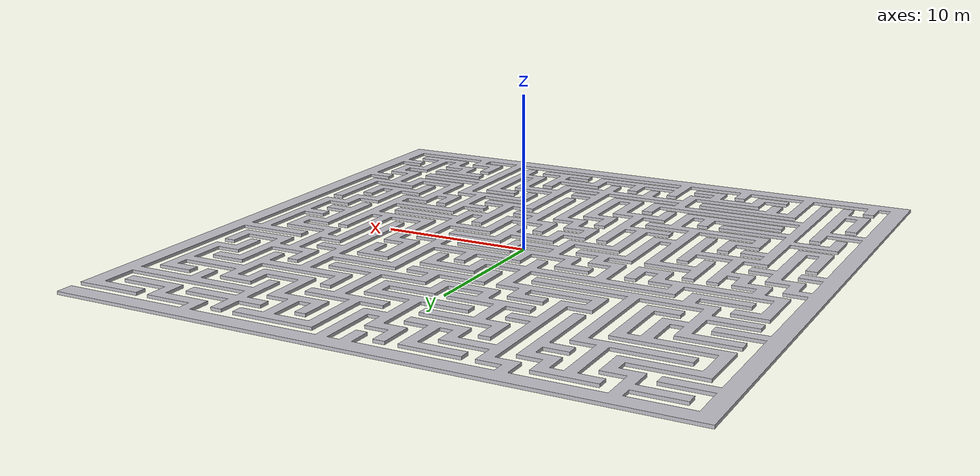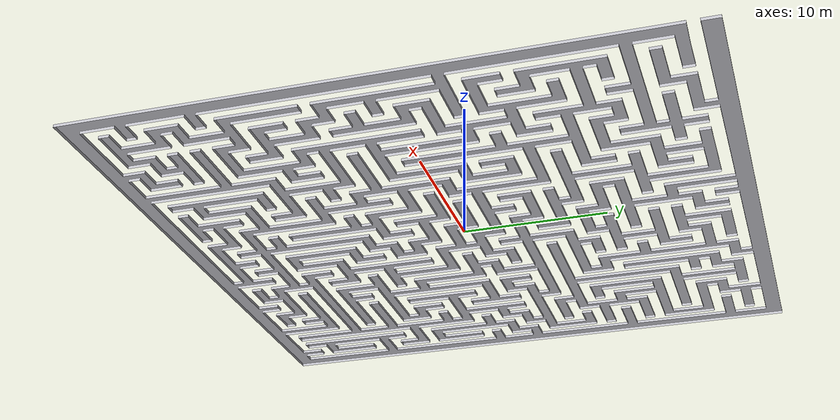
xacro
<?xml version="1.0" ?>
<robot name="maze" xmlns:xacro="http://www.ros.org/wiki/xacro">
    <link name='base_link'>
        <inertial>
            <origin xyz="0.0 0.0 0.0" rpy="0 0 0"/>
            <mass value="100"/>
            <inertia ixx="1.534192" iyy="1.533243" izz="2.123317" ixy="0.0" iyz="0.0" ixz="-0.000592"/>
        </inertial>
        <visual>
            <origin xyz="0 0 0" rpy="0 0 0"/>
            <geometry>
            <mesh filename="package://rover_description/meshes/maze5.stl" scale="20 20 4"/>
            </geometry>
            <material name="silver"/>
        </visual>
        <collision>
            <origin xyz="0 0 0" rpy="0 0 0"/>
            <geometry>
            <mesh filename="package://rover_description/meshes/maze5.stl" scale="20 20 4"/>
            </geometry>
        </collision>
    </link>
    <gazebo>
        <static>true</static>
    </gazebo>
    <gazebo reference="base_link">
        <material>Gazebo/Blue</material>
    </gazebo>

</robot>
